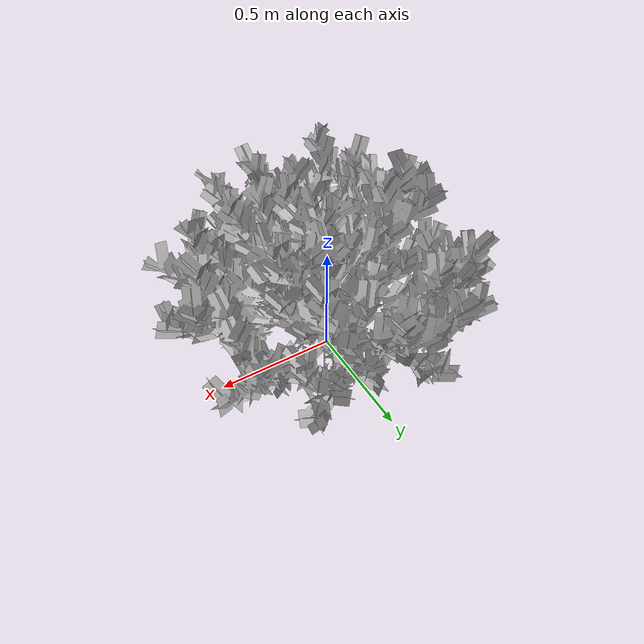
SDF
<?xml version="1.0" ?>
<sdf version="1.6">
  <model name="bush1">
    <static>1</static>
    <link name="link">

      <visual name="branch">
        <geometry>
          <mesh>
            <uri>model://bush1/meshes/OC29_1.obj</uri>
          </mesh>
        </geometry>
        <cast_shadows>1</cast_shadows>
      </visual>
    </link>
  </model>
</sdf>
